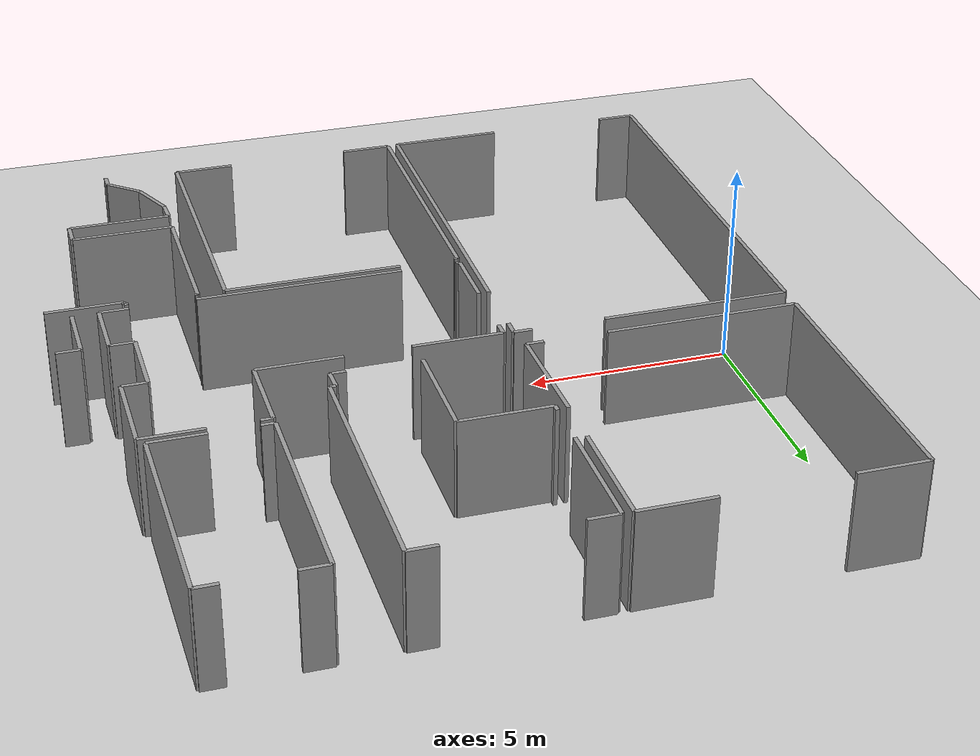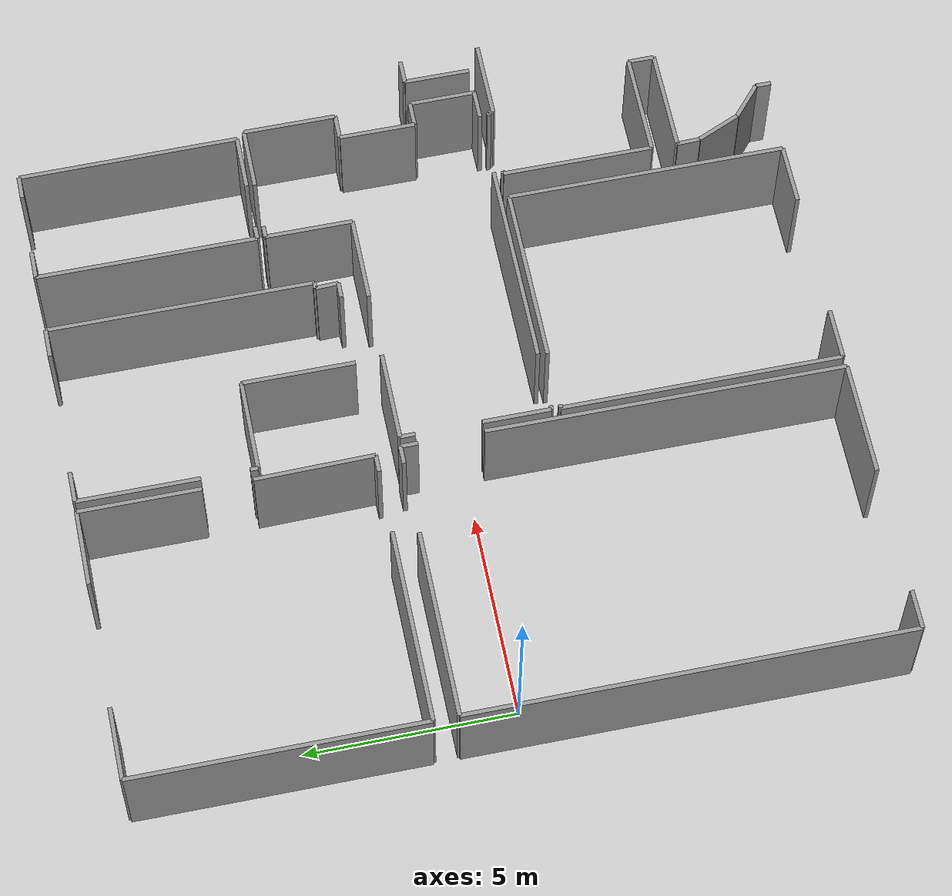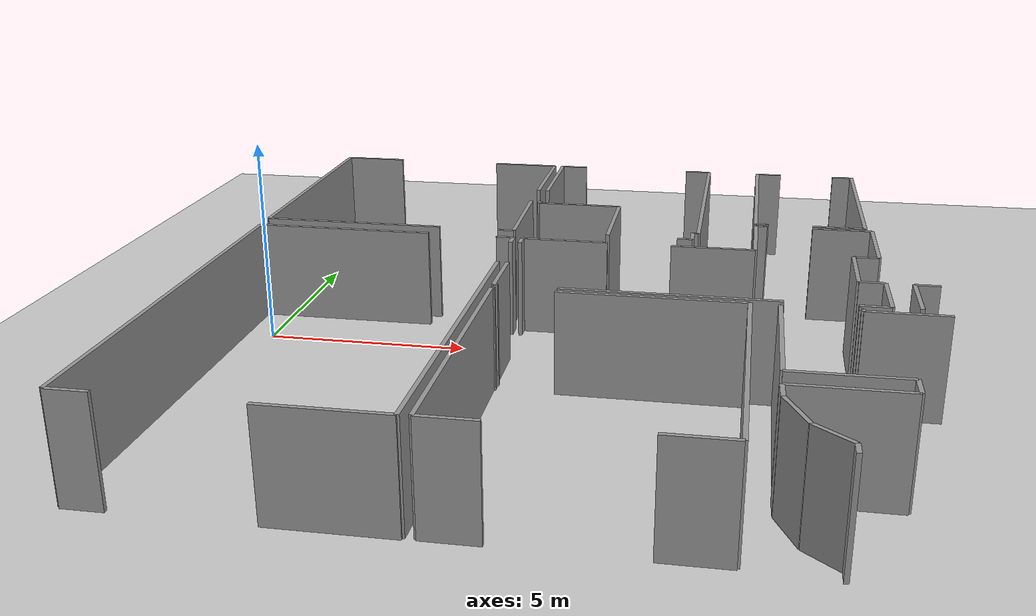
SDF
<sdf version="1.6">
 <world name="default">
  <model name="ground_plane">
   <static>1</static>
   <link name="link">
    <collision name="collision">
     <geometry><plane><normal>0 0 1</normal><size>100 100</size></plane></geometry>
     <surface><friction><ode><mu>100</mu><mu2>50</mu2></ode></friction></surface>
    </collision>
    <visual name="visual">
     <cast_shadows>0</cast_shadows>
     <geometry><plane><normal>0 0 1</normal><size>100 100</size></plane></geometry>
     <material>
      <script><uri>file://media/materials/scripts/gazebo.material</uri><name>Gazebo/Grey</name></script>
     </material>
    </visual>
   </link>
  </model>
  <model name="0510034840_A-40">
   <static>1</static>
   <link name="Wall_127">
    <collision name="Wall_127_Collision">
     <geometry><box><size>0.422307267569 0.1 2.5</size></box></geometry>
     <pose>0.211153633785 0 1.25 0 0 0</pose>
    </collision>
    <visual name="Wall_127_Visual">
     <pose>0.211153633785 0 1.25 0 0 0</pose>
     <geometry><box><size>0.422307267569 0.1 2.5</size></box></geometry>
     <material>
      <script><uri>file://media/materials/scripts/gazebo.material</uri><name>Gazebo/Grey</name></script>
      <ambient>1 1 1 1</ambient>
     </material>
    </visual>
    <pose>39.4942975191 -6.92294510767 0 0 0 3.14159265359</pose>
   </link>
   <link name="Wall_128">
    <collision name="Wall_128_Collision">
     <geometry><box><size>4.67990581545 0.1 2.5</size></box></geometry>
     <pose>2.33995290773 0 1.25 0 0 0</pose>
    </collision>
    <visual name="Wall_128_Visual">
     <pose>2.33995290773 0 1.25 0 0 0</pose>
     <geometry><box><size>4.67990581545 0.1 2.5</size></box></geometry>
     <material>
      <script><uri>file://media/materials/scripts/gazebo.material</uri><name>Gazebo/Grey</name></script>
      <ambient>1 1 1 1</ambient>
     </material>
    </visual>
    <pose>37.5280998712 -6.92294510767 0 0 0 3.14159265359</pose>
   </link>
   <link name="Wall_129">
    <collision name="Wall_129_Collision">
     <geometry><box><size>6.90085870414 0.1 2.5</size></box></geometry>
     <pose>3.45042935207 0 1.25 0 0 0</pose>
    </collision>
    <visual name="Wall_129_Visual">
     <pose>3.45042935207 0 1.25 0 0 0</pose>
     <geometry><box><size>6.90085870414 0.1 2.5</size></box></geometry>
     <material>
      <script><uri>file://media/materials/scripts/gazebo.material</uri><name>Gazebo/Grey</name></script>
      <ambient>1 1 1 1</ambient>
     </material>
    </visual>
    <pose>32.8481940557 -6.92294510767 0 0 0 1.57079632679</pose>
   </link>
   <link name="Wall_130">
    <collision name="Wall_130_Collision">
     <geometry><box><size>1.72235867558 0.1 2.5</size></box></geometry>
     <pose>0.861179337789 0 1.25 0 0 0</pose>
    </collision>
    <visual name="Wall_130_Visual">
     <pose>0.861179337789 0 1.25 0 0 0</pose>
     <geometry><box><size>1.72235867558 0.1 2.5</size></box></geometry>
     <material>
      <script><uri>file://media/materials/scripts/gazebo.material</uri><name>Gazebo/Grey</name></script>
      <ambient>1 1 1 1</ambient>
     </material>
    </visual>
    <pose>32.8481940557 -0.0220864035338 0 0 0 0.0</pose>
   </link>
   <link name="Wall_131">
    <collision name="Wall_131_Collision">
     <geometry><box><size>1.8364717605 0.1 2.5</size></box></geometry>
     <pose>0.918235880251 0 1.25 0 0 0</pose>
    </collision>
    <visual name="Wall_131_Visual">
     <pose>0.918235880251 0 1.25 0 0 0</pose>
     <geometry><box><size>1.8364717605 0.1 2.5</size></box></geometry>
     <material>
      <script><uri>file://media/materials/scripts/gazebo.material</uri><name>Gazebo/Grey</name></script>
      <ambient>1 1 1 1</ambient>
     </material>
    </visual>
    <pose>37.6066716171 -0.0220864035338 0 0 0 0.0</pose>
   </link>
   <link name="Wall_132">
    <collision name="Wall_132_Collision">
     <geometry><box><size>2.87935619403 0.1 2.5</size></box></geometry>
     <pose>1.43967809702 0 1.25 0 0 0</pose>
    </collision>
    <visual name="Wall_132_Visual">
     <pose>1.43967809702 0 1.25 0 0 0</pose>
     <geometry><box><size>2.87935619403 0.1 2.5</size></box></geometry>
     <material>
      <script><uri>file://media/materials/scripts/gazebo.material</uri><name>Gazebo/Grey</name></script>
      <ambient>1 1 1 1</ambient>
     </material>
    </visual>
    <pose>39.4431433776 -0.0220864035338 0 0 0 -1.57079632679</pose>
   </link>
   <link name="Wall_133">
    <collision name="Wall_133_Collision">
     <geometry><box><size>2.8394522086 0.1 2.5</size></box></geometry>
     <pose>1.4197261043 0 1.25 0 0 0</pose>
    </collision>
    <visual name="Wall_133_Visual">
     <pose>1.4197261043 0 1.25 0 0 0</pose>
     <geometry><box><size>2.8394522086 0.1 2.5</size></box></geometry>
     <material>
      <script><uri>file://media/materials/scripts/gazebo.material</uri><name>Gazebo/Grey</name></script>
      <ambient>1 1 1 1</ambient>
     </material>
    </visual>
    <pose>39.4431433776 -4.0839537201 0 0 0 -1.55277985557</pose>
   </link>
   <link name="Wall_134">
    <collision name="Wall_134_Collision">
     <geometry><box><size>0.378134460502 0.1 2.5</size></box></geometry>
     <pose>0.189067230251 0 1.25 0 0 0</pose>
    </collision>
    <visual name="Wall_134_Visual">
     <pose>0.189067230251 0 1.25 0 0 0</pose>
     <geometry><box><size>0.378134460502 0.1 2.5</size></box></geometry>
     <material>
      <script><uri>file://media/materials/scripts/gazebo.material</uri><name>Gazebo/Grey</name></script>
      <ambient>1 1 1 1</ambient>
     </material>
    </visual>
    <pose>44.0840806535 -6.92015257389 0 0 0 3.14159265359</pose>
   </link>
   <link name="Wall_135">
    <collision name="Wall_135_Collision">
     <geometry><box><size>2.67829376186 0.1 2.5</size></box></geometry>
     <pose>1.33914688093 0 1.25 0 0 0</pose>
    </collision>
    <visual name="Wall_135_Visual">
     <pose>1.33914688093 0 1.25 0 0 0</pose>
     <geometry><box><size>2.67829376186 0.1 2.5</size></box></geometry>
     <material>
      <script><uri>file://media/materials/scripts/gazebo.material</uri><name>Gazebo/Grey</name></script>
      <ambient>1 1 1 1</ambient>
     </material>
    </visual>
    <pose>41.9329411093 -6.92015257389 0 0 0 1.57079632679</pose>
   </link>
   <link name="Wall_136">
    <collision name="Wall_136_Collision">
     <geometry><box><size>2.2283150232 0.1 2.5</size></box></geometry>
     <pose>1.1141575116 0 1.25 0 0 0</pose>
    </collision>
    <visual name="Wall_136_Visual">
     <pose>1.1141575116 0 1.25 0 0 0</pose>
     <geometry><box><size>2.2283150232 0.1 2.5</size></box></geometry>
     <material>
      <script><uri>file://media/materials/scripts/gazebo.material</uri><name>Gazebo/Grey</name></script>
      <ambient>1 1 1 1</ambient>
     </material>
    </visual>
    <pose>41.9329411093 -4.24185881203 0 0 0 3.14159265359</pose>
   </link>
   <link name="Wall_137">
    <collision name="Wall_137_Collision">
     <geometry><box><size>0.183672562721 0.1 2.5</size></box></geometry>
     <pose>0.0918362813605 0 1.25 0 0 0</pose>
    </collision>
    <visual name="Wall_137_Visual">
     <pose>0.0918362813605 0 1.25 0 0 0</pose>
     <geometry><box><size>0.183672562721 0.1 2.5</size></box></geometry>
     <material>
      <script><uri>file://media/materials/scripts/gazebo.material</uri><name>Gazebo/Grey</name></script>
      <ambient>1 1 1 1</ambient>
     </material>
    </visual>
    <pose>39.7046260861 -4.24185881203 0 0 0 1.57079632679</pose>
   </link>
   <link name="Wall_138">
    <collision name="Wall_138_Collision">
     <geometry><box><size>2.89649219677 0.1 2.5</size></box></geometry>
     <pose>1.44824609839 0 1.25 0 0 0</pose>
    </collision>
    <visual name="Wall_138_Visual">
     <pose>1.44824609839 0 1.25 0 0 0</pose>
     <geometry><box><size>2.89649219677 0.1 2.5</size></box></geometry>
     <material>
      <script><uri>file://media/materials/scripts/gazebo.material</uri><name>Gazebo/Grey</name></script>
      <ambient>1 1 1 1</ambient>
     </material>
    </visual>
    <pose>39.7046260861 -2.92314820104 0 0 0 1.57079632679</pose>
   </link>
   <link name="Wall_139">
    <collision name="Wall_139_Collision">
     <geometry><box><size>0.747129719541 0.1 2.5</size></box></geometry>
     <pose>0.37356485977 0 1.25 0 0 0</pose>
    </collision>
    <visual name="Wall_139_Visual">
     <pose>0.37356485977 0 1.25 0 0 0</pose>
     <geometry><box><size>0.747129719541 0.1 2.5</size></box></geometry>
     <material>
      <script><uri>file://media/materials/scripts/gazebo.material</uri><name>Gazebo/Grey</name></script>
      <ambient>1 1 1 1</ambient>
     </material>
    </visual>
    <pose>39.7046260861 -0.026656004265 0 0 0 0.0</pose>
   </link>
   <link name="Wall_140">
    <collision name="Wall_140_Collision">
     <geometry><box><size>0.696864111498 0.1 2.5</size></box></geometry>
     <pose>0.348432055749 0 1.25 0 0 0</pose>
    </collision>
    <visual name="Wall_140_Visual">
     <pose>0.348432055749 0 1.25 0 0 0</pose>
     <geometry><box><size>0.696864111498 0.1 2.5</size></box></geometry>
     <material>
      <script><uri>file://media/materials/scripts/gazebo.material</uri><name>Gazebo/Grey</name></script>
      <ambient>1 1 1 1</ambient>
     </material>
    </visual>
    <pose>43.5138960289 -0.026656004265 0 0 0 0.0</pose>
   </link>
   <link name="Wall_141">
    <collision name="Wall_141_Collision">
     <geometry><box><size>6.34920634921 0.1 2.5</size></box></geometry>
     <pose>3.1746031746 0 1.25 0 0 0</pose>
    </collision>
    <visual name="Wall_141_Visual">
     <pose>3.1746031746 0 1.25 0 0 0</pose>
     <geometry><box><size>6.34920634921 0.1 2.5</size></box></geometry>
     <material>
      <script><uri>file://media/materials/scripts/gazebo.material</uri><name>Gazebo/Grey</name></script>
      <ambient>1 1 1 1</ambient>
     </material>
    </visual>
    <pose>44.2107601404 -0.026656004265 0 0 0 -1.57079632679</pose>
   </link>
   <link name="Wall_142">
    <collision name="Wall_142_Collision">
     <geometry><box><size>0.147877356994 0.1 2.5</size></box></geometry>
     <pose>0.0739386784969 0 1.25 0 0 0</pose>
    </collision>
    <visual name="Wall_142_Visual">
     <pose>0.0739386784969 0 1.25 0 0 0</pose>
     <geometry><box><size>0.147877356994 0.1 2.5</size></box></geometry>
     <material>
      <script><uri>file://media/materials/scripts/gazebo.material</uri><name>Gazebo/Grey</name></script>
      <ambient>1 1 1 1</ambient>
     </material>
    </visual>
    <pose>44.2107601404 -6.37586235347 0 0 0 3.14159265359</pose>
   </link>
   <link name="Wall_143">
    <collision name="Wall_143_Collision">
     <geometry><box><size>0.544702849028 0.1 2.5</size></box></geometry>
     <pose>0.272351424514 0 1.25 0 0 0</pose>
    </collision>
    <visual name="Wall_143_Visual">
     <pose>0.272351424514 0 1.25 0 0 0</pose>
     <geometry><box><size>0.544702849028 0.1 2.5</size></box></geometry>
     <material>
      <script><uri>file://media/materials/scripts/gazebo.material</uri><name>Gazebo/Grey</name></script>
      <ambient>1 1 1 1</ambient>
     </material>
    </visual>
    <pose>44.0628827834 -6.37586235347 0 0 0 -1.53187010419</pose>
   </link>
   <link name="Wall_144">
    <collision name="Wall_144_Collision">
     <geometry><box><size>2.74239510545 0.1 2.5</size></box></geometry>
     <pose>1.37119755272 0 1.25 0 0 0</pose>
    </collision>
    <visual name="Wall_144_Visual">
     <pose>1.37119755272 0 1.25 0 0 0</pose>
     <geometry><box><size>2.74239510545 0.1 2.5</size></box></geometry>
     <material>
      <script><uri>file://media/materials/scripts/gazebo.material</uri><name>Gazebo/Grey</name></script>
      <ambient>1 1 1 1</ambient>
     </material>
    </visual>
    <pose>39.5778196658 -18.0217436835 0 0 0 3.14159265359</pose>
   </link>
   <link name="Wall_145">
    <collision name="Wall_145_Collision">
     <geometry><box><size>0.927375081713 0.1 2.5</size></box></geometry>
     <pose>0.463687540857 0 1.25 0 0 0</pose>
    </collision>
    <visual name="Wall_145_Visual">
     <pose>0.463687540857 0 1.25 0 0 0</pose>
     <geometry><box><size>0.927375081713 0.1 2.5</size></box></geometry>
     <material>
      <script><uri>file://media/materials/scripts/gazebo.material</uri><name>Gazebo/Grey</name></script>
      <ambient>1 1 1 1</ambient>
     </material>
    </visual>
    <pose>33.7787424713 -18.0217436835 0 0 0 3.14159265359</pose>
   </link>
   <link name="Wall_146">
    <collision name="Wall_146_Collision">
     <geometry><box><size>10.5051312808 0.1 2.5</size></box></geometry>
     <pose>5.25256564041 0 1.25 0 0 0</pose>
    </collision>
    <visual name="Wall_146_Visual">
     <pose>5.25256564041 0 1.25 0 0 0</pose>
     <geometry><box><size>10.5051312808 0.1 2.5</size></box></geometry>
     <material>
      <script><uri>file://media/materials/scripts/gazebo.material</uri><name>Gazebo/Grey</name></script>
      <ambient>1 1 1 1</ambient>
     </material>
    </visual>
    <pose>32.8513673896 -18.0217436835 0 0 0 1.57079632679</pose>
   </link>
   <link name="Wall_147">
    <collision name="Wall_147_Collision">
     <geometry><box><size>4.53329779199 0.1 2.5</size></box></geometry>
     <pose>2.266648896 0 1.25 0 0 0</pose>
    </collision>
    <visual name="Wall_147_Visual">
     <pose>2.266648896 0 1.25 0 0 0</pose>
     <geometry><box><size>4.53329779199 0.1 2.5</size></box></geometry>
     <material>
      <script><uri>file://media/materials/scripts/gazebo.material</uri><name>Gazebo/Grey</name></script>
      <ambient>1 1 1 1</ambient>
     </material>
    </visual>
    <pose>32.8513673896 -7.51661240266 0 0 0 0.0</pose>
   </link>
   <link name="Wall_148">
    <collision name="Wall_148_Collision">
     <geometry><box><size>0.444266737749 0.1 2.5</size></box></geometry>
     <pose>0.222133368875 0 1.25 0 0 0</pose>
    </collision>
    <visual name="Wall_148_Visual">
     <pose>0.222133368875 0 1.25 0 0 0</pose>
     <geometry><box><size>0.444266737749 0.1 2.5</size></box></geometry>
     <material>
      <script><uri>file://media/materials/scripts/gazebo.material</uri><name>Gazebo/Grey</name></script>
      <ambient>1 1 1 1</ambient>
     </material>
    </visual>
    <pose>39.1589395988 -7.51661240266 0 0 0 0.0</pose>
   </link>
   <link name="Wall_149">
    <collision name="Wall_149_Collision">
     <geometry><box><size>0.413929666229 0.1 2.5</size></box></geometry>
     <pose>0.206964833114 0 1.25 0 0 0</pose>
    </collision>
    <visual name="Wall_149_Visual">
     <pose>0.206964833114 0 1.25 0 0 0</pose>
     <geometry><box><size>0.413929666229 0.1 2.5</size></box></geometry>
     <material>
      <script><uri>file://media/materials/scripts/gazebo.material</uri><name>Gazebo/Grey</name></script>
      <ambient>1 1 1 1</ambient>
     </material>
    </visual>
    <pose>39.6032063365 -7.51661240266 0 0 0 -1.57079632679</pose>
   </link>
   <link name="Wall_150">
    <collision name="Wall_150_Collision">
     <geometry><box><size>8.54265242172 0.1 2.5</size></box></geometry>
     <pose>4.27132621086 0 1.25 0 0 0</pose>
    </collision>
    <visual name="Wall_150_Visual">
     <pose>4.27132621086 0 1.25 0 0 0</pose>
     <geometry><box><size>8.54265242172 0.1 2.5</size></box></geometry>
     <material>
      <script><uri>file://media/materials/scripts/gazebo.material</uri><name>Gazebo/Grey</name></script>
      <ambient>1 1 1 1</ambient>
     </material>
    </visual>
    <pose>39.6032063365 -9.47912898333 0 0 0 -1.57376808625</pose>
   </link>
   <link name="Wall_151">
    <collision name="Wall_151_Collision">
     <geometry><box><size>1.45808343329 0.1 2.5</size></box></geometry>
     <pose>0.729041716647 0 1.25 0 0 0</pose>
    </collision>
    <visual name="Wall_151_Visual">
     <pose>0.729041716647 0 1.25 0 0 0</pose>
     <geometry><box><size>1.45808343329 0.1 2.5</size></box></geometry>
     <material>
      <script><uri>file://media/materials/scripts/gazebo.material</uri><name>Gazebo/Grey</name></script>
      <ambient>1 1 1 1</ambient>
     </material>
    </visual>
    <pose>45.5944606284 -17.9963570128 0 0 0 3.14159265359</pose>
   </link>
   <link name="Wall_152">
    <collision name="Wall_152_Collision">
     <geometry><box><size>1.2351884643 0.1 2.5</size></box></geometry>
     <pose>0.617594232148 0 1.25 0 0 0</pose>
    </collision>
    <visual name="Wall_152_Visual">
     <pose>0.617594232148 0 1.25 0 0 0</pose>
     <geometry><box><size>1.2351884643 0.1 2.5</size></box></geometry>
     <material>
      <script><uri>file://media/materials/scripts/gazebo.material</uri><name>Gazebo/Grey</name></script>
      <ambient>1 1 1 1</ambient>
     </material>
    </visual>
    <pose>41.0733484384 -17.9963570128 0 0 0 3.14159265359</pose>
   </link>
   <link name="Wall_153">
    <collision name="Wall_153_Collision">
     <geometry><box><size>6.67707520167 0.1 2.5</size></box></geometry>
     <pose>3.33853760083 0 1.25 0 0 0</pose>
    </collision>
    <visual name="Wall_153_Visual">
     <pose>3.33853760083 0 1.25 0 0 0</pose>
     <geometry><box><size>6.67707520167 0.1 2.5</size></box></geometry>
     <material>
      <script><uri>file://media/materials/scripts/gazebo.material</uri><name>Gazebo/Grey</name></script>
      <ambient>1 1 1 1</ambient>
     </material>
    </visual>
    <pose>39.8381599741 -17.9963570128 0 0 0 1.57079632679</pose>
   </link>
   <link name="Wall_154">
    <collision name="Wall_154_Collision">
     <geometry><box><size>0.0833952133432 0.1 2.5</size></box></geometry>
     <pose>0.0416976066716 0 1.25 0 0 0</pose>
    </collision>
    <visual name="Wall_154_Visual">
     <pose>0.0416976066716 0 1.25 0 0 0</pose>
     <geometry><box><size>0.0833952133432 0.1 2.5</size></box></geometry>
     <material>
      <script><uri>file://media/materials/scripts/gazebo.material</uri><name>Gazebo/Grey</name></script>
      <ambient>1 1 1 1</ambient>
     </material>
    </visual>
    <pose>39.8381599741 -11.3192818111 0 0 0 0.0</pose>
   </link>
   <link name="Wall_155">
    <collision name="Wall_155_Collision">
     <geometry><box><size>4.30659482239 0.1 2.5</size></box></geometry>
     <pose>2.15329741119 0 1.25 0 0 0</pose>
    </collision>
    <visual name="Wall_155_Visual">
     <pose>2.15329741119 0 1.25 0 0 0</pose>
     <geometry><box><size>4.30659482239 0.1 2.5</size></box></geometry>
     <material>
      <script><uri>file://media/materials/scripts/gazebo.material</uri><name>Gazebo/Grey</name></script>
      <ambient>1 1 1 1</ambient>
     </material>
    </visual>
    <pose>41.2820268718 -11.3192818111 0 0 0 0.0</pose>
   </link>
   <link name="Wall_156">
    <collision name="Wall_156_Collision">
     <geometry><box><size>6.67707775467 0.1 2.5</size></box></geometry>
     <pose>3.33853887733 0 1.25 0 0 0</pose>
    </collision>
    <visual name="Wall_156_Visual">
     <pose>3.33853887733 0 1.25 0 0 0</pose>
     <geometry><box><size>6.67707775467 0.1 2.5</size></box></geometry>
     <material>
      <script><uri>file://media/materials/scripts/gazebo.material</uri><name>Gazebo/Grey</name></script>
      <ambient>1 1 1 1</ambient>
     </material>
    </visual>
    <pose>45.5886216942 -11.3192818111 0 0 0 -1.56992185218</pose>
   </link>
   <link name="Wall_157">
    <collision name="Wall_157_Collision">
     <geometry><box><size>0.703464645888 0.1 2.5</size></box></geometry>
     <pose>0.351732322944 0 1.25 0 0 0</pose>
    </collision>
    <visual name="Wall_157_Visual">
     <pose>0.351732322944 0 1.25 0 0 0</pose>
     <geometry><box><size>0.703464645888 0.1 2.5</size></box></geometry>
     <material>
      <script><uri>file://media/materials/scripts/gazebo.material</uri><name>Gazebo/Grey</name></script>
      <ambient>1 1 1 1</ambient>
     </material>
    </visual>
    <pose>48.6123011113 -11.098163909 0 0 0 3.14159265359</pose>
   </link>
   <link name="Wall_158">
    <collision name="Wall_158_Collision">
     <geometry><box><size>5.00307813383 0.1 2.5</size></box></geometry>
     <pose>2.50153906691 0 1.25 0 0 0</pose>
    </collision>
    <visual name="Wall_158_Visual">
     <pose>2.50153906691 0 1.25 0 0 0</pose>
     <geometry><box><size>5.00307813383 0.1 2.5</size></box></geometry>
     <material>
      <script><uri>file://media/materials/scripts/gazebo.material</uri><name>Gazebo/Grey</name></script>
      <ambient>1 1 1 1</ambient>
     </material>
    </visual>
    <pose>46.3141727436 -11.098163909 0 0 0 3.14159265359</pose>
   </link>
   <link name="Wall_159">
    <collision name="Wall_159_Collision">
     <geometry><box><size>0.098754149134 0.1 2.5</size></box></geometry>
     <pose>0.049377074567 0 1.25 0 0 0</pose>
    </collision>
    <visual name="Wall_159_Visual">
     <pose>0.049377074567 0 1.25 0 0 0</pose>
     <geometry><box><size>0.098754149134 0.1 2.5</size></box></geometry>
     <material>
      <script><uri>file://media/materials/scripts/gazebo.material</uri><name>Gazebo/Grey</name></script>
      <ambient>1 1 1 1</ambient>
     </material>
    </visual>
    <pose>39.9413567906 -11.098163909 0 0 0 3.14159265359</pose>
   </link>
   <link name="Wall_160">
    <collision name="Wall_160_Collision">
     <geometry><box><size>1.61624239193 0.1 2.5</size></box></geometry>
     <pose>0.808121195966 0 1.25 0 0 0</pose>
    </collision>
    <visual name="Wall_160_Visual">
     <pose>0.808121195966 0 1.25 0 0 0</pose>
     <geometry><box><size>1.61624239193 0.1 2.5</size></box></geometry>
     <material>
      <script><uri>file://media/materials/scripts/gazebo.material</uri><name>Gazebo/Grey</name></script>
      <ambient>1 1 1 1</ambient>
     </material>
    </visual>
    <pose>39.8426026415 -11.098163909 0 0 0 1.57079632679</pose>
   </link>
   <link name="Wall_161">
    <collision name="Wall_161_Collision">
     <geometry><box><size>0.362902458064 0.1 2.5</size></box></geometry>
     <pose>0.181451229032 0 1.25 0 0 0</pose>
    </collision>
    <visual name="Wall_161_Visual">
     <pose>0.181451229032 0 1.25 0 0 0</pose>
     <geometry><box><size>0.362902458064 0.1 2.5</size></box></geometry>
     <material>
      <script><uri>file://media/materials/scripts/gazebo.material</uri><name>Gazebo/Grey</name></script>
      <ambient>1 1 1 1</ambient>
     </material>
    </visual>
    <pose>39.8426026415 -7.91442153297 0 0 0 1.57079632679</pose>
   </link>
   <link name="Wall_162">
    <collision name="Wall_162_Collision">
     <geometry><box><size>2.1658638132 0.1 2.5</size></box></geometry>
     <pose>1.0829319066 0 1.25 0 0 0</pose>
    </collision>
    <visual name="Wall_162_Visual">
     <pose>1.0829319066 0 1.25 0 0 0</pose>
     <geometry><box><size>2.1658638132 0.1 2.5</size></box></geometry>
     <material>
      <script><uri>file://media/materials/scripts/gazebo.material</uri><name>Gazebo/Grey</name></script>
      <ambient>1 1 1 1</ambient>
     </material>
    </visual>
    <pose>39.8426026415 -7.55151907491 0 0 0 0.0</pose>
   </link>
   <link name="Wall_163">
    <collision name="Wall_163_Collision">
     <geometry><box><size>2.06406326358 0.1 2.5</size></box></geometry>
     <pose>1.03203163179 0 1.25 0 0 0</pose>
    </collision>
    <visual name="Wall_163_Visual">
     <pose>1.03203163179 0 1.25 0 0 0</pose>
     <geometry><box><size>2.06406326358 0.1 2.5</size></box></geometry>
     <material>
      <script><uri>file://media/materials/scripts/gazebo.material</uri><name>Gazebo/Grey</name></script>
      <ambient>1 1 1 1</ambient>
     </material>
    </visual>
    <pose>43.5988144425 -7.55151907491 0 0 0 0.0</pose>
   </link>
   <link name="Wall_164">
    <collision name="Wall_164_Collision">
     <geometry><box><size>2.08183393309 0.1 2.5</size></box></geometry>
     <pose>1.04091696655 0 1.25 0 0 0</pose>
    </collision>
    <visual name="Wall_164_Visual">
     <pose>1.04091696655 0 1.25 0 0 0</pose>
     <geometry><box><size>2.08183393309 0.1 2.5</size></box></geometry>
     <material>
      <script><uri>file://media/materials/scripts/gazebo.material</uri><name>Gazebo/Grey</name></script>
      <ambient>1 1 1 1</ambient>
     </material>
    </visual>
    <pose>45.6628777061 -7.55151907491 0 0 0 1.57079632679</pose>
   </link>
   <link name="Wall_165">
    <collision name="Wall_165_Collision">
     <geometry><box><size>0.286742445879 0.1 2.5</size></box></geometry>
     <pose>0.143371222939 0 1.25 0 0 0</pose>
    </collision>
    <visual name="Wall_165_Visual">
     <pose>0.143371222939 0 1.25 0 0 0</pose>
     <geometry><box><size>0.286742445879 0.1 2.5</size></box></geometry>
     <material>
      <script><uri>file://media/materials/scripts/gazebo.material</uri><name>Gazebo/Grey</name></script>
      <ambient>1 1 1 1</ambient>
     </material>
    </visual>
    <pose>45.6628777061 -5.46968514182 0 0 0 0.0</pose>
   </link>
   <link name="Wall_166">
    <collision name="Wall_166_Collision">
     <geometry><box><size>1.50200237365 0.1 2.5</size></box></geometry>
     <pose>0.751001186827 0 1.25 0 0 0</pose>
    </collision>
    <visual name="Wall_166_Visual">
     <pose>0.751001186827 0 1.25 0 0 0</pose>
     <geometry><box><size>1.50200237365 0.1 2.5</size></box></geometry>
     <material>
      <script><uri>file://media/materials/scripts/gazebo.material</uri><name>Gazebo/Grey</name></script>
      <ambient>1 1 1 1</ambient>
     </material>
    </visual>
    <pose>47.1108064711 -5.46968514182 0 0 0 0.0</pose>
   </link>
   <link name="Wall_167">
    <collision name="Wall_167_Collision">
     <geometry><box><size>2.2198104885 0.1 2.5</size></box></geometry>
     <pose>1.10990524425 0 1.25 0 0 0</pose>
    </collision>
    <visual name="Wall_167_Visual">
     <pose>1.10990524425 0 1.25 0 0 0</pose>
     <geometry><box><size>2.2198104885 0.1 2.5</size></box></geometry>
     <material>
      <script><uri>file://media/materials/scripts/gazebo.material</uri><name>Gazebo/Grey</name></script>
      <ambient>1 1 1 1</ambient>
     </material>
    </visual>
    <pose>48.6128088447 -5.46968514182 0 0 0 -1.57079632679</pose>
   </link>
   <link name="Wall_168">
    <collision name="Wall_168_Collision">
     <geometry><box><size>0.602425696388 0.1 2.5</size></box></geometry>
     <pose>0.301212848194 0 1.25 0 0 0</pose>
    </collision>
    <visual name="Wall_168_Visual">
     <pose>0.301212848194 0 1.25 0 0 0</pose>
     <geometry><box><size>0.602425696388 0.1 2.5</size></box></geometry>
     <material>
      <script><uri>file://media/materials/scripts/gazebo.material</uri><name>Gazebo/Grey</name></script>
      <ambient>1 1 1 1</ambient>
     </material>
    </visual>
    <pose>48.6128088447 -7.68949563032 0 0 0 3.14159265359</pose>
   </link>
   <link name="Wall_169">
    <collision name="Wall_169_Collision">
     <geometry><box><size>1.82885575928 0.1 2.5</size></box></geometry>
     <pose>0.914427879642 0 1.25 0 0 0</pose>
    </collision>
    <visual name="Wall_169_Visual">
     <pose>0.914427879642 0 1.25 0 0 0</pose>
     <geometry><box><size>1.82885575928 0.1 2.5</size></box></geometry>
     <material>
      <script><uri>file://media/materials/scripts/gazebo.material</uri><name>Gazebo/Grey</name></script>
      <ambient>1 1 1 1</ambient>
     </material>
    </visual>
    <pose>48.0103831483 -7.68949563032 0 0 0 -1.57079632679</pose>
   </link>
   <link name="Wall_170">
    <collision name="Wall_170_Collision">
     <geometry><box><size>0.595063561877 0.1 2.5</size></box></geometry>
     <pose>0.297531780938 0 1.25 0 0 0</pose>
    </collision>
    <visual name="Wall_170_Visual">
     <pose>0.297531780938 0 1.25 0 0 0</pose>
     <geometry><box><size>0.595063561877 0.1 2.5</size></box></geometry>
     <material>
      <script><uri>file://media/materials/scripts/gazebo.material</uri><name>Gazebo/Grey</name></script>
      <ambient>1 1 1 1</ambient>
     </material>
    </visual>
    <pose>48.0103831483 -9.5183513896 0 0 0 0.0</pose>
   </link>
   <link name="Wall_171">
    <collision name="Wall_171_Collision">
     <geometry><box><size>1.57982738911 0.1 2.5</size></box></geometry>
     <pose>0.789913694555 0 1.25 0 0 0</pose>
    </collision>
    <visual name="Wall_171_Visual">
     <pose>0.789913694555 0 1.25 0 0 0</pose>
     <geometry><box><size>1.57982738911 0.1 2.5</size></box></geometry>
     <material>
      <script><uri>file://media/materials/scripts/gazebo.material</uri><name>Gazebo/Grey</name></script>
      <ambient>1 1 1 1</ambient>
     </material>
    </visual>
    <pose>48.6054467102 -9.5183513896 0 0 0 -1.56645761065</pose>
   </link>
   <link name="Wall_172">
    <collision name="Wall_172_Collision">
     <geometry><box><size>1.33775061404 0.1 2.5</size></box></geometry>
     <pose>0.66887530702 0 1.25 0 0 0</pose>
    </collision>
    <visual name="Wall_172_Visual">
     <pose>0.66887530702 0 1.25 0 0 0</pose>
     <geometry><box><size>1.33775061404 0.1 2.5</size></box></geometry>
     <material>
      <script><uri>file://media/materials/scripts/gazebo.material</uri><name>Gazebo/Grey</name></script>
      <ambient>1 1 1 1</ambient>
     </material>
    </visual>
    <pose>48.4554114862 -5.27598484416 0 0 0 3.14159265359</pose>
   </link>
   <link name="Wall_173">
    <collision name="Wall_173_Collision">
     <geometry><box><size>0.32545711874 0.1 2.5</size></box></geometry>
     <pose>0.16272855937 0 1.25 0 0 0</pose>
    </collision>
    <visual name="Wall_173_Visual">
     <pose>0.16272855937 0 1.25 0 0 0</pose>
     <geometry><box><size>0.32545711874 0.1 2.5</size></box></geometry>
     <material>
      <script><uri>file://media/materials/scripts/gazebo.material</uri><name>Gazebo/Grey</name></script>
      <ambient>1 1 1 1</ambient>
     </material>
    </visual>
    <pose>45.9808457569 -5.27598484416 0 0 0 3.14159265359</pose>
   </link>
   <link name="Wall_174">
    <collision name="Wall_174_Collision">
     <geometry><box><size>5.26570324251 0.1 2.5</size></box></geometry>
     <pose>2.63285162126 0 1.25 0 0 0</pose>
    </collision>
    <visual name="Wall_174_Visual">
     <pose>2.63285162126 0 1.25 0 0 0</pose>
     <geometry><box><size>5.26570324251 0.1 2.5</size></box></geometry>
     <material>
      <script><uri>file://media/materials/scripts/gazebo.material</uri><name>Gazebo/Grey</name></script>
      <ambient>1 1 1 1</ambient>
     </material>
    </visual>
    <pose>45.6553886382 -5.27598484416 0 0 0 1.57079632679</pose>
   </link>
   <link name="Wall_175">
    <collision name="Wall_175_Collision">
     <geometry><box><size>0.690136643755 0.1 2.5</size></box></geometry>
     <pose>0.345068321878 0 1.25 0 0 0</pose>
    </collision>
    <visual name="Wall_175_Visual">
     <pose>0.345068321878 0 1.25 0 0 0</pose>
     <geometry><box><size>0.690136643755 0.1 2.5</size></box></geometry>
     <material>
      <script><uri>file://media/materials/scripts/gazebo.material</uri><name>Gazebo/Grey</name></script>
      <ambient>1 1 1 1</ambient>
     </material>
    </visual>
    <pose>45.6553886382 -0.0102816016451 0 0 0 0.0</pose>
   </link>
   <link name="Wall_176">
    <collision name="Wall_176_Collision">
     <geometry><box><size>0.554191022004 0.1 2.5</size></box></geometry>
     <pose>0.277095511002 0 1.25 0 0 0</pose>
    </collision>
    <visual name="Wall_176_Visual">
     <pose>0.277095511002 0 1.25 0 0 0</pose>
     <geometry><box><size>0.554191022004 0.1 2.5</size></box></geometry>
     <material>
      <script><uri>file://media/materials/scripts/gazebo.material</uri><name>Gazebo/Grey</name></script>
      <ambient>1 1 1 1</ambient>
     </material>
    </visual>
    <pose>47.8711372594 -0.0102816016451 0 0 0 0.0</pose>
   </link>
   <link name="Wall_177">
    <collision name="Wall_177_Collision">
     <geometry><box><size>5.26578917518 0.1 2.5</size></box></geometry>
     <pose>2.63289458759 0 1.25 0 0 0</pose>
    </collision>
    <visual name="Wall_177_Visual">
     <pose>2.63289458759 0 1.25 0 0 0</pose>
     <geometry><box><size>5.26578917518 0.1 2.5</size></box></geometry>
     <material>
      <script><uri>file://media/materials/scripts/gazebo.material</uri><name>Gazebo/Grey</name></script>
      <ambient>1 1 1 1</ambient>
     </material>
    </visual>
    <pose>48.4253282814 -0.0102816016451 0 0 0 -1.56508334296</pose>
   </link>
   <link name="Wall_179">
    <collision name="Wall_179_Collision">
     <geometry><box><size>0.364171791601 0.1 2.5</size></box></geometry>
     <pose>0.1820858958 0 1.25 0 0 0</pose>
    </collision>
    <visual name="Wall_179_Visual">
     <pose>0.1820858958 0 1.25 0 0 0</pose>
     <geometry><box><size>0.364171791601 0.1 2.5</size></box></geometry>
     <material>
      <script><uri>file://media/materials/scripts/gazebo.material</uri><name>Gazebo/Grey</name></script>
      <ambient>1 1 1 1</ambient>
     </material>
    </visual>
    <pose>47.4399446571 -18.1569277051 0 0 0 1.57079632679</pose>
   </link>
   <link name="Wall_180">
    <collision name="Wall_180_Collision">
     <geometry><box><size>0.975477347334 0.1 2.5</size></box></geometry>
     <pose>0.487738673667 0 1.25 0 0 0</pose>
    </collision>
    <visual name="Wall_180_Visual">
     <pose>0.487738673667 0 1.25 0 0 0</pose>
     <geometry><box><size>0.975477347334 0.1 2.5</size></box></geometry>
     <material>
      <script><uri>file://media/materials/scripts/gazebo.material</uri><name>Gazebo/Grey</name></script>
      <ambient>1 1 1 1</ambient>
     </material>
    </visual>
    <pose>47.4399446571 -17.7927559135 0 0 0 2.42820995659</pose>
   </link>
   <link name="Wall_181">
    <collision name="Wall_181_Collision">
     <geometry><box><size>1.1431065953 0.1 2.5</size></box></geometry>
     <pose>0.571553297652 0 1.25 0 0 0</pose>
    </collision>
    <visual name="Wall_181_Visual">
     <pose>0.571553297652 0 1.25 0 0 0</pose>
     <geometry><box><size>1.1431065953 0.1 2.5</size></box></geometry>
     <material>
      <script><uri>file://media/materials/scripts/gazebo.material</uri><name>Gazebo/Grey</name></script>
      <ambient>1 1 1 1</ambient>
     </material>
    </visual>
    <pose>46.702334939 -17.154408078 0 0 0 1.98555933121</pose>
   </link>
   <link name="Wall_182">
    <collision name="Wall_182_Collision">
     <geometry><box><size>0.547422865208 0.1 2.5</size></box></geometry>
     <pose>0.273711432604 0 1.25 0 0 0</pose>
    </collision>
    <visual name="Wall_182_Visual">
     <pose>0.273711432604 0 1.25 0 0 0</pose>
     <geometry><box><size>0.547422865208 0.1 2.5</size></box></geometry>
     <material>
      <script><uri>file://media/materials/scripts/gazebo.material</uri><name>Gazebo/Grey</name></script>
      <ambient>1 1 1 1</ambient>
     </material>
    </visual>
    <pose>46.2416937987 -16.1082233773 0 0 0 1.60604853802</pose>
   </link>
   <link name="Wall_183">
    <collision name="Wall_183_Collision">
     <geometry><box><size>2.50515666749 0.1 2.5</size></box></geometry>
     <pose>1.25257833375 0 1.25 0 0 0</pose>
    </collision>
    <visual name="Wall_183_Visual">
     <pose>1.25257833375 0 1.25 0 0 0</pose>
     <geometry><box><size>2.50515666749 0.1 2.5</size></box></geometry>
     <material>
      <script><uri>file://media/materials/scripts/gazebo.material</uri><name>Gazebo/Grey</name></script>
      <ambient>1 1 1 1</ambient>
     </material>
    </visual>
    <pose>46.2223999289 -15.5611406231 0 0 0 0.0</pose>
   </link>
   <link name="Wall_184">
    <collision name="Wall_184_Collision">
     <geometry><box><size>0.624385166568 0.1 2.5</size></box></geometry>
     <pose>0.312192583284 0 1.25 0 0 0</pose>
    </collision>
    <visual name="Wall_184_Visual">
     <pose>0.312192583284 0 1.25 0 0 0</pose>
     <geometry><box><size>0.624385166568 0.1 2.5</size></box></geometry>
     <material>
      <script><uri>file://media/materials/scripts/gazebo.material</uri><name>Gazebo/Grey</name></script>
      <ambient>1 1 1 1</ambient>
     </material>
    </visual>
    <pose>48.7275565964 -15.5611406231 0 0 0 1.57079632679</pose>
   </link>
   <link name="Wall_185">
    <collision name="Wall_185_Collision">
     <geometry><box><size>2.4862435978 0.1 2.5</size></box></geometry>
     <pose>1.2431217989 0 1.25 0 0 0</pose>
    </collision>
    <visual name="Wall_185_Visual">
     <pose>1.2431217989 0 1.25 0 0 0</pose>
     <geometry><box><size>2.4862435978 0.1 2.5</size></box></geometry>
     <material>
      <script><uri>file://media/materials/scripts/gazebo.material</uri><name>Gazebo/Grey</name></script>
      <ambient>1 1 1 1</ambient>
     </material>
    </visual>
    <pose>48.7275565964 -14.9367554565 0 0 0 3.14159265359</pose>
   </link>
   <link name="Wall_186">
    <collision name="Wall_186_Collision">
     <geometry><box><size>3.61645817863 0.1 2.5</size></box></geometry>
     <pose>1.80822908932 0 1.25 0 0 0</pose>
    </collision>
    <visual name="Wall_186_Visual">
     <pose>1.80822908932 0 1.25 0 0 0</pose>
     <geometry><box><size>3.61645817863 0.1 2.5</size></box></geometry>
     <material>
      <script><uri>file://media/materials/scripts/gazebo.material</uri><name>Gazebo/Grey</name></script>
      <ambient>1 1 1 1</ambient>
     </material>
    </visual>
    <pose>46.2413129986 -14.9367554565 0 0 0 1.57079632679</pose>
   </link>
   <link name="Wall_187">
    <collision name="Wall_187_Collision">
     <geometry><box><size>0.0713365447472 0.1 2.5</size></box></geometry>
     <pose>0.0356682723736 0 1.25 0 0 0</pose>
    </collision>
    <visual name="Wall_187_Visual">
     <pose>0.0356682723736 0 1.25 0 0 0</pose>
     <geometry><box><size>0.0713365447472 0.1 2.5</size></box></geometry>
     <material>
      <script><uri>file://media/materials/scripts/gazebo.material</uri><name>Gazebo/Grey</name></script>
      <ambient>1 1 1 1</ambient>
     </material>
    </visual>
    <pose>46.2413129986 -11.3202972779 0 0 0 0.0</pose>
   </link>
   <link name="Wall_188">
    <collision name="Wall_188_Collision">
     <geometry><box><size>0.0954538819393 0.1 2.5</size></box></geometry>
     <pose>0.0477269409696 0 1.25 0 0 0</pose>
    </collision>
    <visual name="Wall_188_Visual">
     <pose>0.0477269409696 0 1.25 0 0 0</pose>
     <geometry><box><size>0.0954538819393 0.1 2.5</size></box></geometry>
     <material>
      <script><uri>file://media/materials/scripts/gazebo.material</uri><name>Gazebo/Grey</name></script>
      <ambient>1 1 1 1</ambient>
     </material>
    </visual>
    <pose>47.8885271288 -11.3202972779 0 0 0 0.0</pose>
   </link>
   <link name="Wall_189">
    <collision name="Wall_189_Collision">
     <geometry><box><size>0.109543484194 0.1 2.5</size></box></geometry>
     <pose>0.0547717420968 0 1.25 0 0 0</pose>
    </collision>
    <visual name="Wall_189_Visual">
     <pose>0.0547717420968 0 1.25 0 0 0</pose>
     <geometry><box><size>0.109543484194 0.1 2.5</size></box></geometry>
     <material>
      <script><uri>file://media/materials/scripts/gazebo.material</uri><name>Gazebo/Grey</name></script>
      <ambient>1 1 1 1</ambient>
     </material>
    </visual>
    <pose>47.9839810108 -11.3202972779 0 0 0 -1.57079632679</pose>
   </link>
   <link name="Wall_190">
    <collision name="Wall_190_Collision">
     <geometry><box><size>1.86579336519 0.1 2.5</size></box></geometry>
     <pose>0.932896682597 0 1.25 0 0 0</pose>
    </collision>
    <visual name="Wall_190_Visual">
     <pose>0.932896682597 0 1.25 0 0 0</pose>
     <geometry><box><size>1.86579336519 0.1 2.5</size></box></geometry>
     <material>
      <script><uri>file://media/materials/scripts/gazebo.material</uri><name>Gazebo/Grey</name></script>
      <ambient>1 1 1 1</ambient>
     </material>
    </visual>
    <pose>47.9839810108 -11.4298407621 0 0 0 0.0</pose>
   </link>
   <link name="Wall_202">
    <collision name="Wall_202_Collision">
     <geometry><box><size>1.57778158578 0.1 2.5</size></box></geometry>
     <pose>0.788890792889 0 1.25 0 0 0</pose>
    </collision>
    <visual name="Wall_202_Visual">
     <pose>0.788890792889 0 1.25 0 0 0</pose>
     <geometry><box><size>1.57778158578 0.1 2.5</size></box></geometry>
     <material>
      <script><uri>file://media/materials/scripts/gazebo.material</uri><name>Gazebo/Grey</name></script>
      <ambient>1 1 1 1</ambient>
     </material>
    </visual>
    <pose>49.2441753457 -11.0989255092 0 0 0 1.57079632679</pose>
   </link>
   <link name="Wall_203">
    <collision name="Wall_203_Collision">
     <geometry><box><size>0.573992625172 0.1 2.5</size></box></geometry>
     <pose>0.286996312586 0 1.25 0 0 0</pose>
    </collision>
    <visual name="Wall_203_Visual">
     <pose>0.286996312586 0 1.25 0 0 0</pose>
     <geometry><box><size>0.573992625172 0.1 2.5</size></box></geometry>
     <material>
      <script><uri>file://media/materials/scripts/gazebo.material</uri><name>Gazebo/Grey</name></script>
      <ambient>1 1 1 1</ambient>
     </material>
    </visual>
    <pose>49.2441753457 -9.52114392338 0 0 0 0.0</pose>
   </link>
   <pose>-33.6 9.05692770511 0 0 0 0</pose>
  </model>
 </world>
</sdf>
